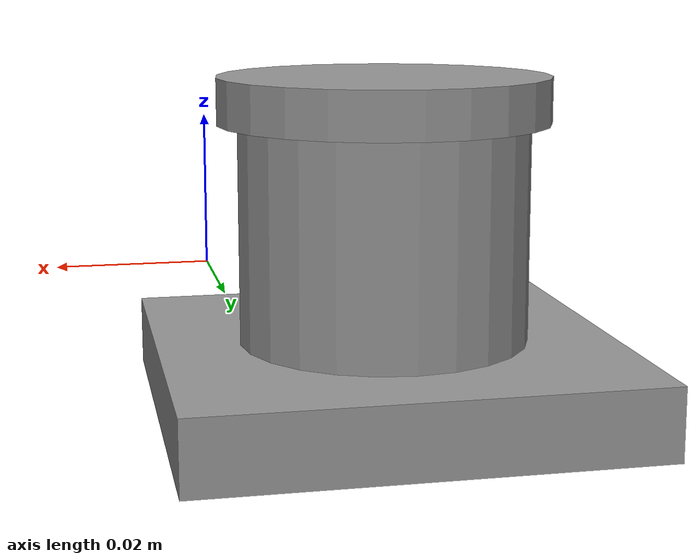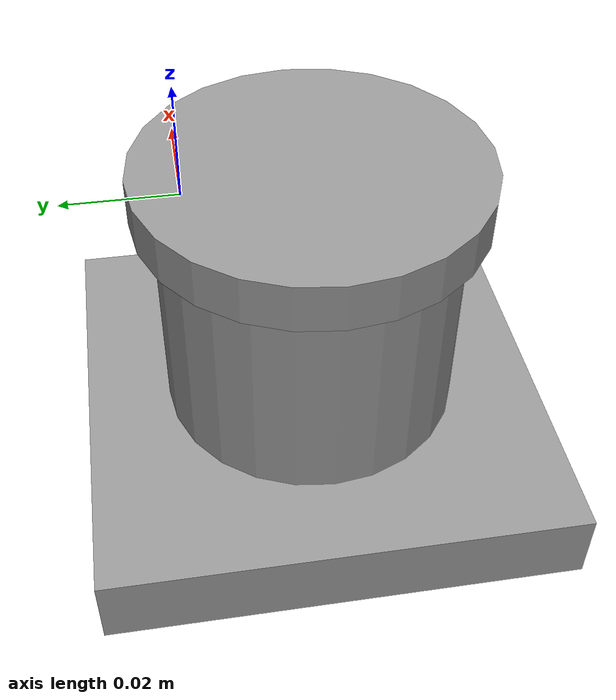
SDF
<?xml version='1.0'?>
<sdf version='1.7'>
  <model name='friction_device'>
    <link name='link'>
      <inertial>
        <mass>0.136644</mass>
        <inertia>
          <ixx>2.893e-05</ixx>
          <ixy>0</ixy>
          <ixz>0</ixz>
          <iyy>2.893e-05</iyy>
          <iyz>0</iyz>
          <izz>3.307e-05</izz>
        </inertia>
        <pose>0 0 0 0 -0 0</pose>
      </inertial>
      <self_collide>0</self_collide>
      <enable_wind>0</enable_wind>
      <kinematic>0</kinematic>
      <pose>-0.028485 -0.016783 -0 0 -0 0</pose>
      <gravity>1</gravity>
      <visual name='ModelPreview_1::link::visual_1'>
        <geometry>
          <cylinder>
            <radius>0.025</radius>
            <length>0.007</length>
          </cylinder>
        </geometry>
        <material>
          <script>
            <name>Gazebo/Grey</name>
            <uri>file://media/materials/scripts/gazebo.material</uri>
          </script>
          <shader type='pixel'>
            <normal_map>__default__</normal_map>
          </shader>
          <ambient>0.3 0.3 0.3 1</ambient>
          <diffuse>0.7 0.7 0.7 1</diffuse>
          <specular>0.01 0.01 0.01 1</specular>
          <emissive>0 0 0 1</emissive>
        </material>
        <pose>0 0 0.02 0 -0 0</pose>
        <transparency>0</transparency>
        <cast_shadows>1</cast_shadows>
      </visual>
      <visual name='ModelPreview_1::link::visual_3'>
        <geometry>
          <box>
            <size>0.069 0.069 0.011</size>
          </box>
        </geometry>
        <material>
          <script>
            <name>Gazebo/Grey</name>
            <uri>file://media/materials/scripts/gazebo.material</uri>
          </script>
          <shader type='pixel'>
            <normal_map>__default__</normal_map>
          </shader>
          <ambient>0.3 0.3 0.3 1</ambient>
          <diffuse>0.7 0.7 0.7 1</diffuse>
          <specular>0.01 0.01 0.01 1</specular>
          <emissive>0 0 0 1</emissive>
        </material>
        <pose>0 0 -0.022 0 -0 0</pose>
        <transparency>0</transparency>
        <cast_shadows>1</cast_shadows>
      </visual>
      <visual name='visual'>
        <geometry>
          <cylinder>
            <radius>0.022</radius>
            <length>0.033</length>
          </cylinder>
        </geometry>
        <material>
          <script>
            <name>Gazebo/Grey</name>
            <uri>file://media/materials/scripts/gazebo.material</uri>
          </script>
          <shader type='pixel'>
            <normal_map>__default__</normal_map>
          </shader>
          <ambient>0.3 0.3 0.3 1</ambient>
          <diffuse>0.7 0.7 0.7 1</diffuse>
          <specular>0.01 0.01 0.01 1</specular>
          <emissive>0 0 0 1</emissive>
        </material>
        <pose>0 0 0 0 -0 0</pose>
        <transparency>0</transparency>
        <cast_shadows>1</cast_shadows>
      </visual>
      <collision name='collision'>
        <laser_retro>0</laser_retro>
        <max_contacts>10</max_contacts>
        <pose>0 0 0 0 -0 0</pose>
        <geometry>
          <cylinder>
            <radius>0.022</radius>
            <length>0.033</length>
          </cylinder>
        </geometry>
        <surface>
          <friction>
            <ode>
              <mu>0.42</mu>
              <mu2>0.42</mu2>
              <fdir1>0 0 0</fdir1>
              <slip1>0</slip1>
              <slip2>0</slip2>
            </ode>
            <torsional>
              <coefficient>1</coefficient>
              <patch_radius>0</patch_radius>
              <surface_radius>0</surface_radius>
              <use_patch_radius>1</use_patch_radius>
              <ode>
                <slip>0</slip>
              </ode>
            </torsional>
          </friction>
          <bounce>
            <restitution_coefficient>0</restitution_coefficient>
            <threshold>1e+06</threshold>
          </bounce>
          <contact>
            <collide_without_contact>0</collide_without_contact>
            <collide_without_contact_bitmask>1</collide_without_contact_bitmask>
            <collide_bitmask>1</collide_bitmask>
            <ode>
              <soft_cfm>0</soft_cfm>
              <soft_erp>0.2</soft_erp>
              <kp>1e+13</kp>
              <kd>1</kd>
              <max_vel>0.01</max_vel>
              <min_depth>0</min_depth>
            </ode>
            <bullet>
              <split_impulse>1</split_impulse>
              <split_impulse_penetration_threshold>-0.01</split_impulse_penetration_threshold>
              <soft_cfm>0</soft_cfm>
              <soft_erp>0.2</soft_erp>
              <kp>1e+13</kp>
              <kd>1</kd>
            </bullet>
          </contact>
        </surface>
      </collision>
      <collision name='collision_2'>
        <laser_retro>0</laser_retro>
        <max_contacts>10</max_contacts>
        <pose>0 0 0.02 0 -0 0</pose>
        <geometry>
          <cylinder>
            <radius>0.025</radius>
            <length>0.007</length>
          </cylinder>
        </geometry>
        <surface>
          <friction>
            <ode>
              <mu>0.42</mu>
              <mu2>0.42</mu2>
              <fdir1>0 0 0</fdir1>
              <slip1>0</slip1>
              <slip2>0</slip2>
            </ode>
            <torsional>
              <coefficient>1</coefficient>
              <patch_radius>0</patch_radius>
              <surface_radius>0</surface_radius>
              <use_patch_radius>1</use_patch_radius>
              <ode>
                <slip>0</slip>
              </ode>
            </torsional>
          </friction>
          <bounce>
            <restitution_coefficient>0</restitution_coefficient>
            <threshold>1e+06</threshold>
          </bounce>
          <contact>
            <collide_without_contact>0</collide_without_contact>
            <collide_without_contact_bitmask>1</collide_without_contact_bitmask>
            <collide_bitmask>1</collide_bitmask>
            <ode>
              <soft_cfm>0</soft_cfm>
              <soft_erp>0.2</soft_erp>
              <kp>1e+13</kp>
              <kd>1</kd>
              <max_vel>0.01</max_vel>
              <min_depth>0</min_depth>
            </ode>
            <bullet>
              <split_impulse>1</split_impulse>
              <split_impulse_penetration_threshold>-0.01</split_impulse_penetration_threshold>
              <soft_cfm>0</soft_cfm>
              <soft_erp>0.2</soft_erp>
              <kp>1e+13</kp>
              <kd>1</kd>
            </bullet>
          </contact>
        </surface>
      </collision>
      <collision name='collision_3'>
        <laser_retro>0</laser_retro>
        <max_contacts>10</max_contacts>
        <pose>0 0 -0.022 0 -0 0</pose>
        <geometry>
          <box>
            <size>0.069 0.069 0.011</size>
          </box>
        </geometry>
        <surface>
          <friction>
            <ode>
              <mu>1</mu>
              <mu2>1</mu2>
              <fdir1>0 0 0</fdir1>
              <slip1>0</slip1>
              <slip2>0</slip2>
            </ode>
            <torsional>
              <coefficient>1</coefficient>
              <patch_radius>0</patch_radius>
              <surface_radius>0</surface_radius>
              <use_patch_radius>1</use_patch_radius>
              <ode>
                <slip>0</slip>
              </ode>
            </torsional>
          </friction>
          <bounce>
            <restitution_coefficient>0</restitution_coefficient>
            <threshold>1e+06</threshold>
          </bounce>
          <contact>
            <collide_without_contact>0</collide_without_contact>
            <collide_without_contact_bitmask>1</collide_without_contact_bitmask>
            <collide_bitmask>1</collide_bitmask>
            <ode>
              <soft_cfm>0</soft_cfm>
              <soft_erp>0.2</soft_erp>
              <kp>1e+13</kp>
              <kd>1</kd>
              <max_vel>0.01</max_vel>
              <min_depth>0</min_depth>
            </ode>
            <bullet>
              <split_impulse>1</split_impulse>
              <split_impulse_penetration_threshold>-0.01</split_impulse_penetration_threshold>
              <soft_cfm>0</soft_cfm>
              <soft_erp>0.2</soft_erp>
              <kp>1e+13</kp>
              <kd>1</kd>
            </bullet>
          </contact>
        </surface>
      </collision>
    </link>
    <static>0</static>
    <allow_auto_disable>1</allow_auto_disable>
  </model>
</sdf>
